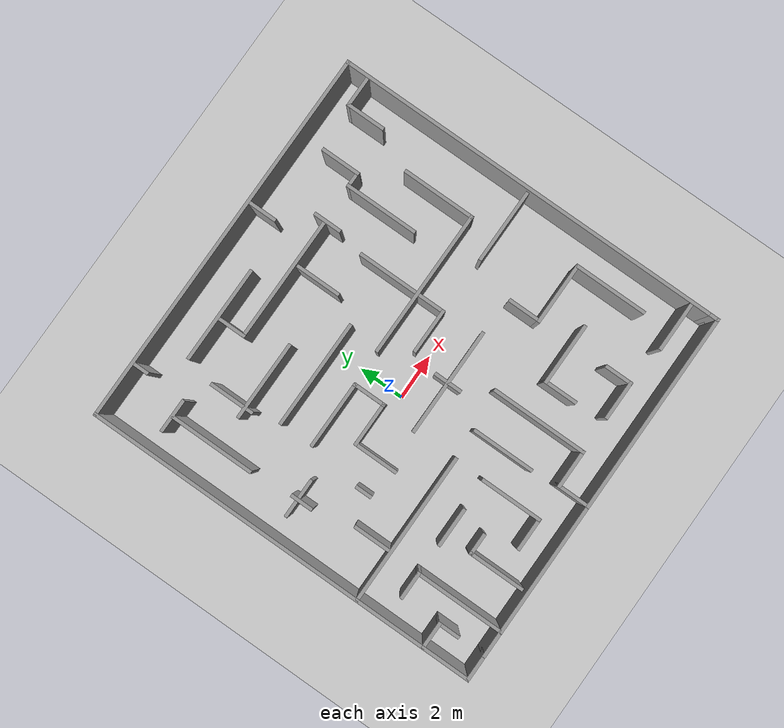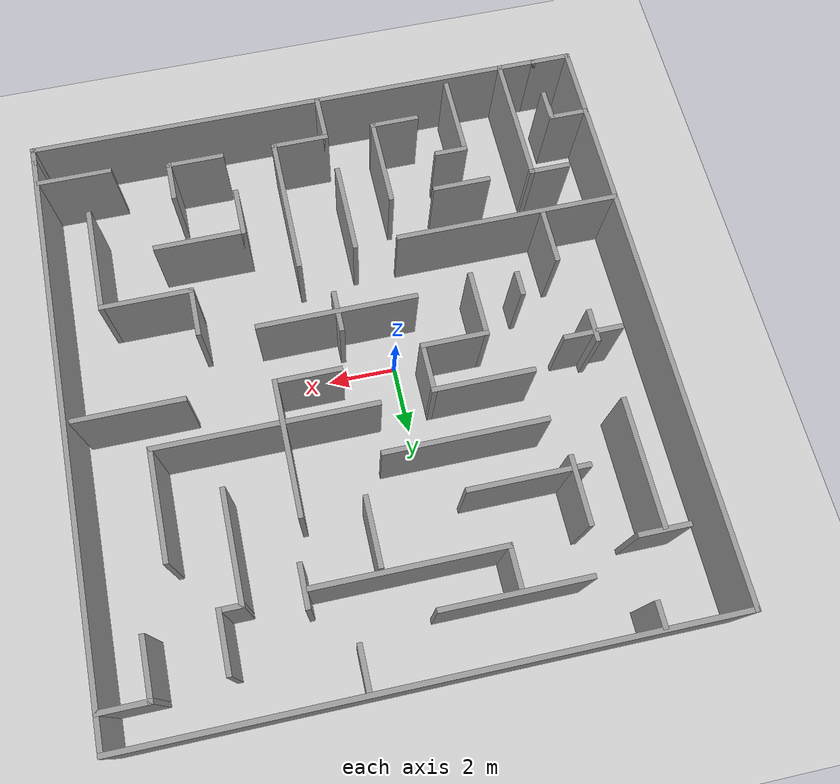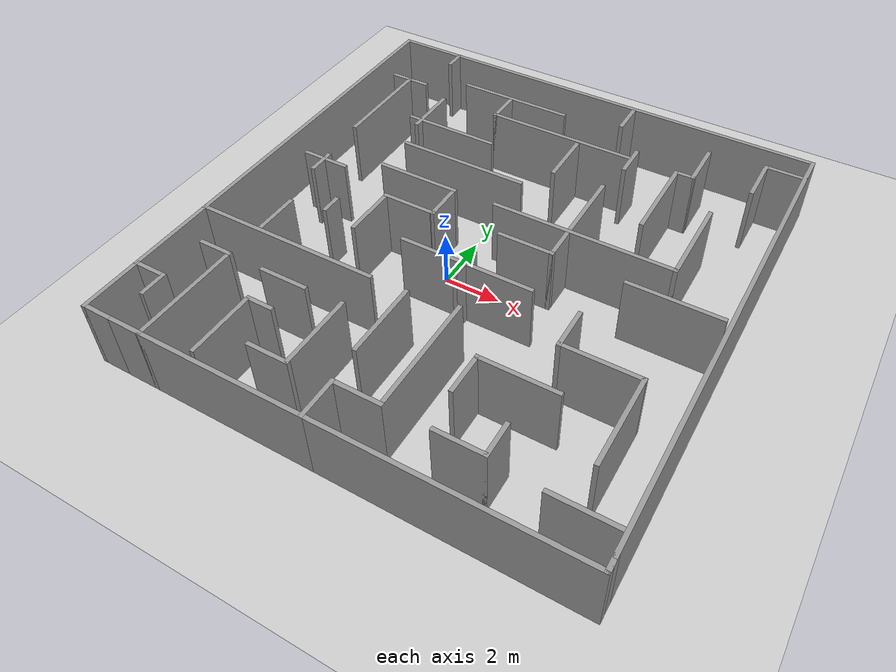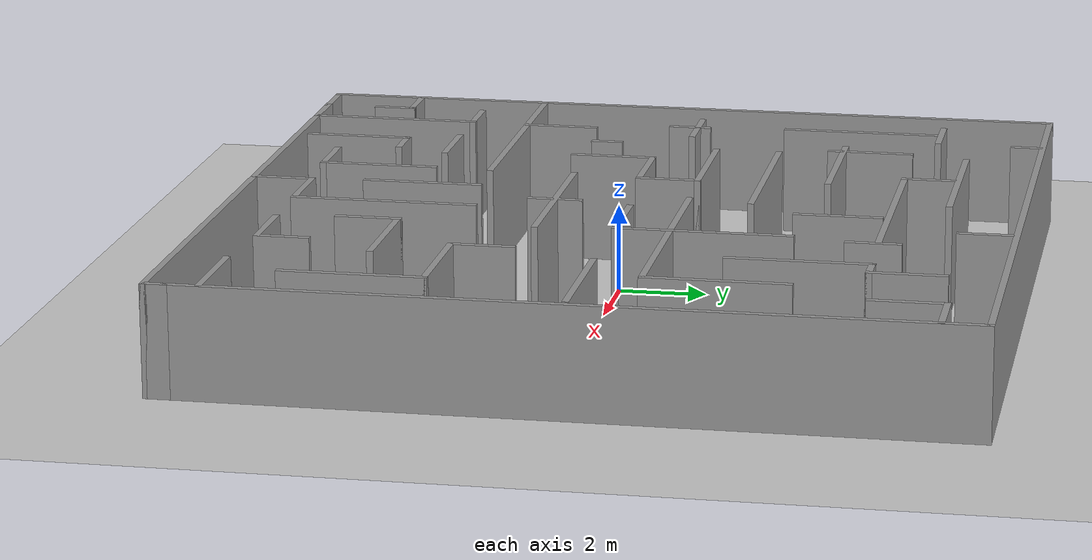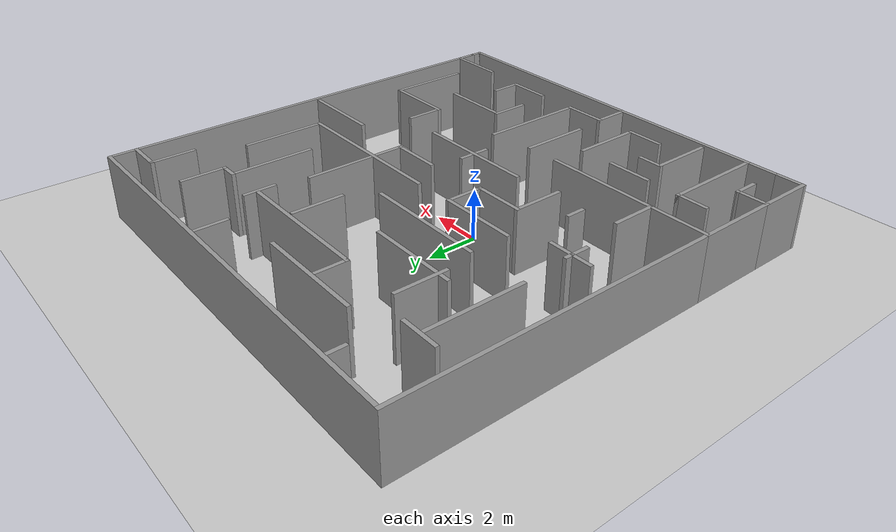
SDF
<sdf version="1.6">
 <world name="default">
  <light name="sun" type="directional">
   <pose>0 0 10 0 -0 0</pose>
   <diffuse>0.8 0.8 0.8 1</diffuse>
   <specular>0.1 0.1 0.1 1</specular>
   <attenuation>
    <range>1000</range>
    <constant>0.9</constant>
    <linear>0.01</linear>
    <quadratic>0.001</quadratic>
   </attenuation>
   <direction>-0.5 0.5 -1</direction>
  </light>
  <model name="ground_plane">
   <static>1</static>
   <link name="link">
    <collision name="collision">
     <geometry><plane><normal>0 0 1</normal><size>100 100</size></plane></geometry>
     <surface><friction><ode><mu>100</mu><mu2>50</mu2></ode></friction></surface>
    </collision>
    <visual name="visual">
     <cast_shadows>0</cast_shadows>
     <geometry><plane><normal>0 0 1</normal><size>100 100</size></plane></geometry>
     <material>
      <script><uri>file://media/materials/scripts/gazebo.material</uri><name>Gazebo/Grey</name></script>
     </material>
    </visual>
   </link>
  </model>
  <gravity>0 0 -9.8</gravity>
  <magnetic_field>6e-06 2.3e-05 -4.2e-05</magnetic_field>
  <atmosphere type="adiabatic"/>
  <physics name="default_physics" default="0" type="ode">
   <max_step_size>0.001</max_step_size>
   <real_time_factor>1</real_time_factor>
   <real_time_update_rate>1000</real_time_update_rate>
  </physics>
  <scene><ambient>0.4 0.4 0.4 1</ambient><background>0.7 0.7 0.7 1</background><shadows>1</shadows></scene>
  <spherical_coordinates>
   <surface_model>EARTH_WGS84</surface_model>
   <latitude_deg>0</latitude_deg>
   <longitude_deg>0</longitude_deg>
   <elevation>0</elevation>
   <heading_deg>0</heading_deg>
  </spherical_coordinates>
  <model name="maze1">
   <pose>1.03644 0.434019 0 0 -0 0</pose>
   <link name="Wall_1">
    <collision name="Wall_1_Collision">
     <geometry><box><size>1.25 0.15 2.5</size></box></geometry>
     <pose>0 0 1.25 0 -0 0</pose>
    </collision>
    <visual name="Wall_1_Visual">
     <pose>0 0 1.25 0 -0 0</pose>
     <geometry><box><size>1.25 0.15 2.5</size></box></geometry>
     <material>
      <script><uri>file://media/materials/scripts/gazebo.material</uri><name>Gazebo/Grey</name></script>
      <ambient>1 1 1 1</ambient>
     </material>
    </visual>
    <pose>-7.875 -8.775 0 0 -0 0</pose>
   </link>
   <link name="Wall_10">
    <collision name="Wall_10_Collision">
     <geometry><box><size>3.25 0.15 2.5</size></box></geometry>
     <pose>0 0 1.25 0 -0 0</pose>
    </collision>
    <visual name="Wall_10_Visual">
     <pose>0 0 1.25 0 -0 0</pose>
     <geometry><box><size>3.25 0.15 2.5</size></box></geometry>
     <material>
      <script><uri>file://media/materials/scripts/gazebo.material</uri><name>Gazebo/Grey</name></script>
      <ambient>1 1 1 1</ambient>
     </material>
    </visual>
    <pose>-8.425 -5.125 0 0 -0 1.5708</pose>
   </link>
   <link name="Wall_103">
    <collision name="Wall_103_Collision">
     <geometry><box><size>1.75 0.15 2.5</size></box></geometry>
     <pose>0 0 1.25 0 -0 0</pose>
    </collision>
    <visual name="Wall_103_Visual">
     <pose>0 0 1.25 0 -0 0</pose>
     <geometry><box><size>1.75 0.15 2.5</size></box></geometry>
     <material>
      <script><uri>file://media/materials/scripts/gazebo.material</uri><name>Gazebo/Grey</name></script>
      <ambient>1 1 1 1</ambient>
     </material>
    </visual>
    <pose>-4.05305 -4.95301 0 0 -0 0</pose>
   </link>
   <link name="Wall_105">
    <collision name="Wall_105_Collision">
     <geometry><box><size>2 0.15 2.5</size></box></geometry>
     <pose>0 0 1.25 0 -0 0</pose>
    </collision>
    <visual name="Wall_105_Visual">
     <pose>0 0 1.25 0 -0 0</pose>
     <geometry><box><size>2 0.15 2.5</size></box></geometry>
     <material>
      <script><uri>file://media/materials/scripts/gazebo.material</uri><name>Gazebo/Grey</name></script>
      <ambient>1 1 1 1</ambient>
     </material>
    </visual>
    <pose>-4.89755 4.83845 0 0 0 -1.5708</pose>
   </link>
   <link name="Wall_107">
    <collision name="Wall_107_Collision">
     <geometry><box><size>1 0.15 2.5</size></box></geometry>
     <pose>0 0 1.25 0 -0 0</pose>
    </collision>
    <visual name="Wall_107_Visual">
     <pose>0 0 1.25 0 -0 0</pose>
     <geometry><box><size>1 0.15 2.5</size></box></geometry>
     <material>
      <script><uri>file://media/materials/scripts/gazebo.material</uri><name>Gazebo/Grey</name></script>
      <ambient>1 1 1 1</ambient>
     </material>
    </visual>
    <pose>-6.59572 0.314694 0 0 0 -1.5708</pose>
   </link>
   <link name="Wall_109">
    <collision name="Wall_109_Collision">
     <geometry><box><size>0.75 0.15 2.5</size></box></geometry>
     <pose>0 0 1.25 0 -0 0</pose>
    </collision>
    <visual name="Wall_109_Visual">
     <pose>0 0 1.25 0 -0 0</pose>
     <geometry><box><size>0.75 0.15 2.5</size></box></geometry>
     <material>
      <script><uri>file://media/materials/scripts/gazebo.material</uri><name>Gazebo/Grey</name></script>
      <ambient>1 1 1 1</ambient>
     </material>
    </visual>
    <pose>-4.89755 -1.39999 0 0 0 -1.5708</pose>
   </link>
   <link name="Wall_11">
    <collision name="Wall_11_Collision">
     <geometry><box><size>6.75 0.15 2.5</size></box></geometry>
     <pose>0 0 1.25 0 -0 0</pose>
    </collision>
    <visual name="Wall_11_Visual">
     <pose>0 0 1.25 0 -0 0</pose>
     <geometry><box><size>6.75 0.15 2.5</size></box></geometry>
     <material>
      <script><uri>file://media/materials/scripts/gazebo.material</uri><name>Gazebo/Grey</name></script>
      <ambient>1 1 1 1</ambient>
     </material>
    </visual>
    <pose>-5.125 -3.575 0 0 -0 0</pose>
   </link>
   <link name="Wall_111">
    <collision name="Wall_111_Collision">
     <geometry><box><size>2 0.15 2.5</size></box></geometry>
     <pose>0 0 1.25 0 -0 0</pose>
    </collision>
    <visual name="Wall_111_Visual">
     <pose>0 0 1.25 0 -0 0</pose>
     <geometry><box><size>2 0.15 2.5</size></box></geometry>
     <material>
      <script><uri>file://media/materials/scripts/gazebo.material</uri><name>Gazebo/Grey</name></script>
      <ambient>1 1 1 1</ambient>
     </material>
    </visual>
    <pose>0.763016 4.76769 0 0 0 -1.5708</pose>
   </link>
   <link name="Wall_113">
    <collision name="Wall_113_Collision">
     <geometry><box><size>1.25 0.15 2.5</size></box></geometry>
     <pose>0 0 1.25 0 -0 0</pose>
    </collision>
    <visual name="Wall_113_Visual">
     <pose>0 0 1.25 0 -0 0</pose>
     <geometry><box><size>1.25 0.15 2.5</size></box></geometry>
     <material>
      <script><uri>file://media/materials/scripts/gazebo.material</uri><name>Gazebo/Grey</name></script>
      <ambient>1 1 1 1</ambient>
     </material>
    </visual>
    <pose>2.81497 5.7795 0 0 0 -1.5708</pose>
   </link>
   <link name="Wall_116">
    <collision name="Wall_116_Collision">
     <geometry><box><size>1.75 0.15 2.5</size></box></geometry>
     <pose>0 0 1.25 0 -0 0</pose>
    </collision>
    <visual name="Wall_116_Visual">
     <pose>0 0 1.25 0 -0 0</pose>
     <geometry><box><size>1.75 0.15 2.5</size></box></geometry>
     <material>
      <script><uri>file://media/materials/scripts/gazebo.material</uri><name>Gazebo/Grey</name></script>
      <ambient>1 1 1 1</ambient>
     </material>
    </visual>
    <pose>-6.53797 0.503261 0 0 -0 0</pose>
   </link>
   <link name="Wall_118">
    <collision name="Wall_118_Collision">
     <geometry><box><size>1.5 0.15 2.5</size></box></geometry>
     <pose>0 0 1.25 0 -0 0</pose>
    </collision>
    <visual name="Wall_118_Visual">
     <pose>0 0 1.25 0 -0 0</pose>
     <geometry><box><size>1.5 0.15 2.5</size></box></geometry>
     <material>
      <script><uri>file://media/materials/scripts/gazebo.material</uri><name>Gazebo/Grey</name></script>
      <ambient>1 1 1 1</ambient>
     </material>
    </visual>
    <pose>-6.75761 6.31466 0 0 -0 0</pose>
   </link>
   <link name="Wall_14">
    <collision name="Wall_14_Collision">
     <geometry><box><size>2.75 0.15 2.5</size></box></geometry>
     <pose>0 0 1.25 0 -0 0</pose>
    </collision>
    <visual name="Wall_14_Visual">
     <pose>0 0 1.25 0 -0 0</pose>
     <geometry><box><size>2.75 0.15 2.5</size></box></geometry>
     <material>
      <script><uri>file://media/materials/scripts/gazebo.material</uri><name>Gazebo/Grey</name></script>
      <ambient>1 1 1 1</ambient>
     </material>
    </visual>
    <pose>-1.875 -6.225 0 0 0 -1.5708</pose>
   </link>
   <link name="Wall_15">
    <collision name="Wall_15_Collision">
     <geometry><box><size>1.5 0.15 2.5</size></box></geometry>
     <pose>0 0 1.25 0 -0 0</pose>
    </collision>
    <visual name="Wall_15_Visual">
     <pose>0 0 1.25 0 -0 0</pose>
     <geometry><box><size>1.5 0.15 2.5</size></box></geometry>
     <material>
      <script><uri>file://media/materials/scripts/gazebo.material</uri><name>Gazebo/Grey</name></script>
      <ambient>1 1 1 1</ambient>
     </material>
    </visual>
    <pose>-2.55 -7.525 0 0 -0 3.14159</pose>
   </link>
   <link name="Wall_17">
    <collision name="Wall_17_Collision">
     <geometry><box><size>1 0.15 2.5</size></box></geometry>
     <pose>0 0 1.25 0 -0 0</pose>
    </collision>
    <visual name="Wall_17_Visual">
     <pose>0 0 1.25 0 -0 0</pose>
     <geometry><box><size>1 0.15 2.5</size></box></geometry>
     <material>
      <script><uri>file://media/materials/scripts/gazebo.material</uri><name>Gazebo/Grey</name></script>
      <ambient>1 1 1 1</ambient>
     </material>
    </visual>
    <pose>-4.01126 -6.13071 0 0 -0 3.14159</pose>
   </link>
   <link name="Wall_18">
    <collision name="Wall_18_Collision">
     <geometry><box><size>2.5 0.15 2.5</size></box></geometry>
     <pose>0 0 1.25 0 -0 0</pose>
    </collision>
    <visual name="Wall_18_Visual">
     <pose>0 0 1.25 0 -0 0</pose>
     <geometry><box><size>2.5 0.15 2.5</size></box></geometry>
     <material>
      <script><uri>file://media/materials/scripts/gazebo.material</uri><name>Gazebo/Grey</name></script>
      <ambient>1 1 1 1</ambient>
     </material>
    </visual>
    <pose>-4.43626 -7.30571 0 0 0 -1.5708</pose>
   </link>
   <link name="Wall_2">
    <collision name="Wall_2_Collision">
     <geometry><box><size>1.25 0.15 2.5</size></box></geometry>
     <pose>0 0 1.25 0 -0 0</pose>
    </collision>
    <visual name="Wall_2_Visual">
     <pose>0 0 1.25 0 -0 0</pose>
     <geometry><box><size>1.25 0.15 2.5</size></box></geometry>
     <material>
      <script><uri>file://media/materials/scripts/gazebo.material</uri><name>Gazebo/Grey</name></script>
      <ambient>1 1 1 1</ambient>
     </material>
    </visual>
    <pose>-6.775 -8.775 0 0 -0 0</pose>
   </link>
   <link name="Wall_20">
    <collision name="Wall_20_Collision">
     <geometry><box><size>6 0.15 2.5</size></box></geometry>
     <pose>0 0 1.25 0 -0 0</pose>
    </collision>
    <visual name="Wall_20_Visual">
     <pose>0 0 1.25 0 -0 0</pose>
     <geometry><box><size>6 0.15 2.5</size></box></geometry>
     <material>
      <script><uri>file://media/materials/scripts/gazebo.material</uri><name>Gazebo/Grey</name></script>
      <ambient>1 1 1 1</ambient>
     </material>
    </visual>
    <pose>-3.3 -8.775 0 0 -0 0</pose>
   </link>
   <link name="Wall_21">
    <collision name="Wall_21_Collision">
     <geometry><box><size>1.5 0.15 2.5</size></box></geometry>
     <pose>0 0 1.25 0 -0 0</pose>
    </collision>
    <visual name="Wall_21_Visual">
     <pose>0 0 1.25 0 -0 0</pose>
     <geometry><box><size>1.5 0.15 2.5</size></box></geometry>
     <material>
      <script><uri>file://media/materials/scripts/gazebo.material</uri><name>Gazebo/Grey</name></script>
      <ambient>1 1 1 1</ambient>
     </material>
    </visual>
    <pose>-0.375 -8.1 0 0 -0 1.5708</pose>
   </link>
   <link name="Wall_22">
    <collision name="Wall_22_Collision">
     <geometry><box><size>1.75 0.15 2.5</size></box></geometry>
     <pose>0 0 1.25 0 -0 0</pose>
    </collision>
    <visual name="Wall_22_Visual">
     <pose>0 0 1.25 0 -0 0</pose>
     <geometry><box><size>1.75 0.15 2.5</size></box></geometry>
     <material>
      <script><uri>file://media/materials/scripts/gazebo.material</uri><name>Gazebo/Grey</name></script>
      <ambient>1 1 1 1</ambient>
     </material>
    </visual>
    <pose>0.425 -7.425 0 0 -0 0</pose>
   </link>
   <link name="Wall_23">
    <collision name="Wall_23_Collision">
     <geometry><box><size>4.25 0.15 2.5</size></box></geometry>
     <pose>0 0 1.25 0 -0 0</pose>
    </collision>
    <visual name="Wall_23_Visual">
     <pose>0 0 1.25 0 -0 0</pose>
     <geometry><box><size>4.25 0.15 2.5</size></box></geometry>
     <material>
      <script><uri>file://media/materials/scripts/gazebo.material</uri><name>Gazebo/Grey</name></script>
      <ambient>1 1 1 1</ambient>
     </material>
    </visual>
    <pose>1.225 -5.375 0 0 -0 1.5708</pose>
   </link>
   <link name="Wall_26">
    <collision name="Wall_26_Collision">
     <geometry><box><size>2.75 0.15 2.5</size></box></geometry>
     <pose>0 0 1.25 0 -0 0</pose>
    </collision>
    <visual name="Wall_26_Visual">
     <pose>0 0 1.25 0 -0 0</pose>
     <geometry><box><size>2.75 0.15 2.5</size></box></geometry>
     <material>
      <script><uri>file://media/materials/scripts/gazebo.material</uri><name>Gazebo/Grey</name></script>
      <ambient>1 1 1 1</ambient>
     </material>
    </visual>
    <pose>-0.496672 -4.87116 0 0 -0 1.5708</pose>
   </link>
   <link name="Wall_28">
    <collision name="Wall_28_Collision">
     <geometry><box><size>12.5 0.15 2.5</size></box></geometry>
     <pose>0 0 1.25 0 -0 0</pose>
    </collision>
    <visual name="Wall_28_Visual">
     <pose>0 0 1.25 0 -0 0</pose>
     <geometry><box><size>12.5 0.15 2.5</size></box></geometry>
     <material>
      <script><uri>file://media/materials/scripts/gazebo.material</uri><name>Gazebo/Grey</name></script>
      <ambient>1 1 1 1</ambient>
     </material>
    </visual>
    <pose>-8.425 2.6 0 0 -0 1.5708</pose>
   </link>
   <link name="Wall_29">
    <collision name="Wall_29_Collision">
     <geometry><box><size>17 0.15 2.5</size></box></geometry>
     <pose>0 0 1.25 0 -0 0</pose>
    </collision>
    <visual name="Wall_29_Visual">
     <pose>0 0 1.25 0 -0 0</pose>
     <geometry><box><size>17 0.15 2.5</size></box></geometry>
     <material>
      <script><uri>file://media/materials/scripts/gazebo.material</uri><name>Gazebo/Grey</name></script>
      <ambient>1 1 1 1</ambient>
     </material>
    </visual>
    <pose>0 8.775 0 0 -0 0</pose>
   </link>
   <link name="Wall_3">
    <collision name="Wall_3_Collision">
     <geometry><box><size>4 0.15 2.5</size></box></geometry>
     <pose>0 0 1.25 0 -0 0</pose>
    </collision>
    <visual name="Wall_3_Visual">
     <pose>0 0 1.25 0 -0 0</pose>
     <geometry><box><size>4 0.15 2.5</size></box></geometry>
     <material>
      <script><uri>file://media/materials/scripts/gazebo.material</uri><name>Gazebo/Grey</name></script>
      <ambient>1 1 1 1</ambient>
     </material>
    </visual>
    <pose>-6.225 -6.85 0 0 -0 1.5708</pose>
   </link>
   <link name="Wall_30">
    <collision name="Wall_30_Collision">
     <geometry><box><size>17.25 0.15 2.5</size></box></geometry>
     <pose>0 0 1.25 0 -0 0</pose>
    </collision>
    <visual name="Wall_30_Visual">
     <pose>0 0 1.25 0 -0 0</pose>
     <geometry><box><size>17.25 0.15 2.5</size></box></geometry>
     <material>
      <script><uri>file://media/materials/scripts/gazebo.material</uri><name>Gazebo/Grey</name></script>
      <ambient>1 1 1 1</ambient>
     </material>
    </visual>
    <pose>8.425 0.224999 0 0 0 -1.5708</pose>
   </link>
   <link name="Wall_31">
    <collision name="Wall_31_Collision">
     <geometry><box><size>0.5 0.15 2.5</size></box></geometry>
     <pose>0 0 1.25 0 -0 0</pose>
    </collision>
    <visual name="Wall_31_Visual">
     <pose>0 0 1.25 0 -0 0</pose>
     <geometry><box><size>0.5 0.15 2.5</size></box></geometry>
     <material>
      <script><uri>file://media/materials/scripts/gazebo.material</uri><name>Gazebo/Grey</name></script>
      <ambient>1 1 1 1</ambient>
     </material>
    </visual>
    <pose>8.425 -8.5 0 0 0 -1.5708</pose>
   </link>
   <link name="Wall_32">
    <collision name="Wall_32_Collision">
     <geometry><box><size>0.25 0.15 2.5</size></box></geometry>
     <pose>0 0 1.25 0 -0 0</pose>
    </collision>
    <visual name="Wall_32_Visual">
     <pose>0 0 1.25 0 -0 0</pose>
     <geometry><box><size>0.25 0.15 2.5</size></box></geometry>
     <material>
      <script><uri>file://media/materials/scripts/gazebo.material</uri><name>Gazebo/Grey</name></script>
      <ambient>1 1 1 1</ambient>
     </material>
    </visual>
    <pose>8.425 -8.725 0 0 0 -1.5708</pose>
   </link>
   <link name="Wall_33">
    <collision name="Wall_33_Collision">
     <geometry><box><size>8.95 0.15 2.5</size></box></geometry>
     <pose>0 0 1.25 0 -0 0</pose>
    </collision>
    <visual name="Wall_33_Visual">
     <pose>0 0 1.25 0 -0 0</pose>
     <geometry><box><size>8.95 0.15 2.5</size></box></geometry>
     <material>
      <script><uri>file://media/materials/scripts/gazebo.material</uri><name>Gazebo/Grey</name></script>
      <ambient>1 1 1 1</ambient>
     </material>
    </visual>
    <pose>4.025 -8.775 0 0 -0 3.14159</pose>
   </link>
   <link name="Wall_35">
    <collision name="Wall_35_Collision">
     <geometry><box><size>1.75 0.15 2.5</size></box></geometry>
     <pose>0 0 1.25 0 -0 0</pose>
    </collision>
    <visual name="Wall_35_Visual">
     <pose>0 0 1.25 0 -0 0</pose>
     <geometry><box><size>1.75 0.15 2.5</size></box></geometry>
     <material>
      <script><uri>file://media/materials/scripts/gazebo.material</uri><name>Gazebo/Grey</name></script>
      <ambient>1 1 1 1</ambient>
     </material>
    </visual>
    <pose>3.65784 -7.41598 0 0 -0 0</pose>
   </link>
   <link name="Wall_36">
    <collision name="Wall_36_Collision">
     <geometry><box><size>1.25 0.15 2.5</size></box></geometry>
     <pose>0 0 1.25 0 -0 0</pose>
    </collision>
    <visual name="Wall_36_Visual">
     <pose>0 0 1.25 0 -0 0</pose>
     <geometry><box><size>1.25 0.15 2.5</size></box></geometry>
     <material>
      <script><uri>file://media/materials/scripts/gazebo.material</uri><name>Gazebo/Grey</name></script>
      <ambient>1 1 1 1</ambient>
     </material>
    </visual>
    <pose>4.45784 -6.86598 0 0 -0 1.5708</pose>
   </link>
   <link name="Wall_39">
    <collision name="Wall_39_Collision">
     <geometry><box><size>2.25 0.15 2.5</size></box></geometry>
     <pose>0 0 1.25 0 -0 0</pose>
    </collision>
    <visual name="Wall_39_Visual">
     <pose>0 0 1.25 0 -0 0</pose>
     <geometry><box><size>2.25 0.15 2.5</size></box></geometry>
     <material>
      <script><uri>file://media/materials/scripts/gazebo.material</uri><name>Gazebo/Grey</name></script>
      <ambient>1 1 1 1</ambient>
     </material>
    </visual>
    <pose>7.29766 -7.60207 0 0 -0 3.14159</pose>
   </link>
   <link name="Wall_4">
    <collision name="Wall_4_Collision">
     <geometry><box><size>1.25 0.15 2.5</size></box></geometry>
     <pose>0 0 1.25 0 -0 0</pose>
    </collision>
    <visual name="Wall_4_Visual">
     <pose>0 0 1.25 0 -0 0</pose>
     <geometry><box><size>1.25 0.15 2.5</size></box></geometry>
     <material>
      <script><uri>file://media/materials/scripts/gazebo.material</uri><name>Gazebo/Grey</name></script>
      <ambient>1 1 1 1</ambient>
     </material>
    </visual>
    <pose>-6.775 -4.925 0 0 -0 3.14159</pose>
   </link>
   <link name="Wall_42">
    <collision name="Wall_42_Collision">
     <geometry><box><size>1.5 0.15 2.5</size></box></geometry>
     <pose>0 0 1.25 0 -0 0</pose>
    </collision>
    <visual name="Wall_42_Visual">
     <pose>0 0 1.25 0 -0 0</pose>
     <geometry><box><size>1.5 0.15 2.5</size></box></geometry>
     <material>
      <script><uri>file://media/materials/scripts/gazebo.material</uri><name>Gazebo/Grey</name></script>
      <ambient>1 1 1 1</ambient>
     </material>
    </visual>
    <pose>2.62602 -5.39178 0 0 -0 1.5708</pose>
   </link>
   <link name="Wall_45">
    <collision name="Wall_45_Collision">
     <geometry><box><size>3.25 0.15 2.5</size></box></geometry>
     <pose>0 0 1.25 0 -0 0</pose>
    </collision>
    <visual name="Wall_45_Visual">
     <pose>0 0 1.25 0 -0 0</pose>
     <geometry><box><size>3.25 0.15 2.5</size></box></geometry>
     <material>
      <script><uri>file://media/materials/scripts/gazebo.material</uri><name>Gazebo/Grey</name></script>
      <ambient>1 1 1 1</ambient>
     </material>
    </visual>
    <pose>7.01214 -4.69516 0 0 -0 1.5708</pose>
   </link>
   <link name="Wall_46">
    <collision name="Wall_46_Collision">
     <geometry><box><size>2.75 0.15 2.5</size></box></geometry>
     <pose>0 0 1.25 0 -0 0</pose>
    </collision>
    <visual name="Wall_46_Visual">
     <pose>0 0 1.25 0 -0 0</pose>
     <geometry><box><size>2.75 0.15 2.5</size></box></geometry>
     <material>
      <script><uri>file://media/materials/scripts/gazebo.material</uri><name>Gazebo/Grey</name></script>
      <ambient>1 1 1 1</ambient>
     </material>
    </visual>
    <pose>5.71214 -3.14516 0 0 -0 3.14159</pose>
   </link>
   <link name="Wall_47">
    <collision name="Wall_47_Collision">
     <geometry><box><size>1.5 0.15 2.5</size></box></geometry>
     <pose>0 0 1.25 0 -0 0</pose>
    </collision>
    <visual name="Wall_47_Visual">
     <pose>0 0 1.25 0 -0 0</pose>
     <geometry><box><size>1.5 0.15 2.5</size></box></geometry>
     <material>
      <script><uri>file://media/materials/scripts/gazebo.material</uri><name>Gazebo/Grey</name></script>
      <ambient>1 1 1 1</ambient>
     </material>
    </visual>
    <pose>4.41214 -2.47016 0 0 -0 1.5708</pose>
   </link>
   <link name="Wall_49">
    <collision name="Wall_49_Collision">
     <geometry><box><size>2.75 0.15 2.5</size></box></geometry>
     <pose>0 0 1.25 0 -0 0</pose>
    </collision>
    <visual name="Wall_49_Visual">
     <pose>0 0 1.25 0 -0 0</pose>
     <geometry><box><size>2.75 0.15 2.5</size></box></geometry>
     <material>
      <script><uri>file://media/materials/scripts/gazebo.material</uri><name>Gazebo/Grey</name></script>
      <ambient>1 1 1 1</ambient>
     </material>
    </visual>
    <pose>3.92602 -4.71678 0 0 -0 0</pose>
   </link>
   <link name="Wall_51">
    <collision name="Wall_51_Collision">
     <geometry><box><size>1.75 0.15 2.5</size></box></geometry>
     <pose>0 0 1.25 0 -0 0</pose>
    </collision>
    <visual name="Wall_51_Visual">
     <pose>0 0 1.25 0 -0 0</pose>
     <geometry><box><size>1.75 0.15 2.5</size></box></geometry>
     <material>
      <script><uri>file://media/materials/scripts/gazebo.material</uri><name>Gazebo/Grey</name></script>
      <ambient>1 1 1 1</ambient>
     </material>
    </visual>
    <pose>-6.16739 -2.74277 0 0 -0 1.5708</pose>
   </link>
   <link name="Wall_53">
    <collision name="Wall_53_Collision">
     <geometry><box><size>2 0.15 2.5</size></box></geometry>
     <pose>0 0 1.25 0 -0 0</pose>
    </collision>
    <visual name="Wall_53_Visual">
     <pose>0 0 1.25 0 -0 0</pose>
     <geometry><box><size>2 0.15 2.5</size></box></geometry>
     <material>
      <script><uri>file://media/materials/scripts/gazebo.material</uri><name>Gazebo/Grey</name></script>
      <ambient>1 1 1 1</ambient>
     </material>
    </visual>
    <pose>-3.56739 -1.01777 0 0 -0 1.5708</pose>
   </link>
   <link name="Wall_54">
    <collision name="Wall_54_Collision">
     <geometry><box><size>2 0.15 2.5</size></box></geometry>
     <pose>0 0 1.25 0 -0 0</pose>
    </collision>
    <visual name="Wall_54_Visual">
     <pose>0 0 1.25 0 -0 0</pose>
     <geometry><box><size>2 0.15 2.5</size></box></geometry>
     <material>
      <script><uri>file://media/materials/scripts/gazebo.material</uri><name>Gazebo/Grey</name></script>
      <ambient>1 1 1 1</ambient>
     </material>
    </visual>
    <pose>-2.64239 -0.092773 0 0 -0 0</pose>
   </link>
   <link name="Wall_55">
    <collision name="Wall_55_Collision">
     <geometry><box><size>1.5 0.15 2.5</size></box></geometry>
     <pose>0 0 1.25 0 -0 0</pose>
    </collision>
    <visual name="Wall_55_Visual">
     <pose>0 0 1.25 0 -0 0</pose>
     <geometry><box><size>1.5 0.15 2.5</size></box></geometry>
     <material>
      <script><uri>file://media/materials/scripts/gazebo.material</uri><name>Gazebo/Grey</name></script>
      <ambient>1 1 1 1</ambient>
     </material>
    </visual>
    <pose>-1.71739 0.582227 0 0 -0 1.5708</pose>
   </link>
   <link name="Wall_56">
    <collision name="Wall_56_Collision">
     <geometry><box><size>3 0.15 2.5</size></box></geometry>
     <pose>0 0 1.25 0 -0 0</pose>
    </collision>
    <visual name="Wall_56_Visual">
     <pose>0 0 1.25 0 -0 0</pose>
     <geometry><box><size>3 0.15 2.5</size></box></geometry>
     <material>
      <script><uri>file://media/materials/scripts/gazebo.material</uri><name>Gazebo/Grey</name></script>
      <ambient>1 1 1 1</ambient>
     </material>
    </visual>
    <pose>-3.14239 1.25723 0 0 -0 3.14159</pose>
   </link>
   <link name="Wall_58">
    <collision name="Wall_58_Collision">
     <geometry><box><size>4.25 0.15 2.5</size></box></geometry>
     <pose>0 0 1.25 0 -0 0</pose>
    </collision>
    <visual name="Wall_58_Visual">
     <pose>0 0 1.25 0 -0 0</pose>
     <geometry><box><size>4.25 0.15 2.5</size></box></geometry>
     <material>
      <script><uri>file://media/materials/scripts/gazebo.material</uri><name>Gazebo/Grey</name></script>
      <ambient>1 1 1 1</ambient>
     </material>
    </visual>
    <pose>-2.51739 7.10723 0 0 -0 0</pose>
   </link>
   <link name="Wall_6">
    <collision name="Wall_6_Collision">
     <geometry><box><size>2.25 0.15 2.5</size></box></geometry>
     <pose>0 0 1.25 0 -0 0</pose>
    </collision>
    <visual name="Wall_6_Visual">
     <pose>0 0 1.25 0 -0 0</pose>
     <geometry><box><size>2.25 0.15 2.5</size></box></geometry>
     <material>
      <script><uri>file://media/materials/scripts/gazebo.material</uri><name>Gazebo/Grey</name></script>
      <ambient>1 1 1 1</ambient>
     </material>
    </visual>
    <pose>-8.425 -7.725 0 0 -0 1.5708</pose>
   </link>
   <link name="Wall_65">
    <collision name="Wall_65_Collision">
     <geometry><box><size>3.75 0.15 2.5</size></box></geometry>
     <pose>0 0 1.25 0 -0 0</pose>
    </collision>
    <visual name="Wall_65_Visual">
     <pose>0 0 1.25 0 -0 0</pose>
     <geometry><box><size>3.75 0.15 2.5</size></box></geometry>
     <material>
      <script><uri>file://media/materials/scripts/gazebo.material</uri><name>Gazebo/Grey</name></script>
      <ambient>1 1 1 1</ambient>
     </material>
    </visual>
    <pose>-6.7785 4.44016 0 0 0 -1.5708</pose>
   </link>
   <link name="Wall_67">
    <collision name="Wall_67_Collision">
     <geometry><box><size>3.5 0.15 2.5</size></box></geometry>
     <pose>0 0 1.25 0 -0 0</pose>
    </collision>
    <visual name="Wall_67_Visual">
     <pose>0 0 1.25 0 -0 0</pose>
     <geometry><box><size>3.5 0.15 2.5</size></box></geometry>
     <material>
      <script><uri>file://media/materials/scripts/gazebo.material</uri><name>Gazebo/Grey</name></script>
      <ambient>1 1 1 1</ambient>
     </material>
    </visual>
    <pose>-3.631 4.20974 0 0 -0 0</pose>
   </link>
   <link name="Wall_69">
    <collision name="Wall_69_Collision">
     <geometry><box><size>1.25 0.15 2.5</size></box></geometry>
     <pose>0 0 1.25 0 -0 0</pose>
    </collision>
    <visual name="Wall_69_Visual">
     <pose>0 0 1.25 0 -0 0</pose>
     <geometry><box><size>1.25 0.15 2.5</size></box></geometry>
     <material>
      <script><uri>file://media/materials/scripts/gazebo.material</uri><name>Gazebo/Grey</name></script>
      <ambient>1 1 1 1</ambient>
     </material>
    </visual>
    <pose>-2.6603 6.42849 0 0 0 -1.5708</pose>
   </link>
   <link name="Wall_7">
    <collision name="Wall_7_Collision">
     <geometry><box><size>1.25 0.15 2.5</size></box></geometry>
     <pose>0 0 1.25 0 -0 0</pose>
    </collision>
    <visual name="Wall_7_Visual">
     <pose>0 0 1.25 0 -0 0</pose>
     <geometry><box><size>1.25 0.15 2.5</size></box></geometry>
     <material>
      <script><uri>file://media/materials/scripts/gazebo.material</uri><name>Gazebo/Grey</name></script>
      <ambient>1 1 1 1</ambient>
     </material>
    </visual>
    <pose>-7.875 -6.675 0 0 -0 0</pose>
   </link>
   <link name="Wall_70">
    <collision name="Wall_70_Collision">
     <geometry><box><size>5.5 0.15 2.5</size></box></geometry>
     <pose>0 0 1.25 0 -0 0</pose>
    </collision>
    <visual name="Wall_70_Visual">
     <pose>0 0 1.25 0 -0 0</pose>
     <geometry><box><size>5.5 0.15 2.5</size></box></geometry>
     <material>
      <script><uri>file://media/materials/scripts/gazebo.material</uri><name>Gazebo/Grey</name></script>
      <ambient>1 1 1 1</ambient>
     </material>
    </visual>
    <pose>0.014701 5.87849 0 0 -0 0</pose>
   </link>
   <link name="Wall_74">
    <collision name="Wall_74_Collision">
     <geometry><box><size>1.25 0.15 2.5</size></box></geometry>
     <pose>0 0 1.25 0 -0 0</pose>
    </collision>
    <visual name="Wall_74_Visual">
     <pose>0 0 1.25 0 -0 0</pose>
     <geometry><box><size>1.25 0.15 2.5</size></box></geometry>
     <material>
      <script><uri>file://media/materials/scripts/gazebo.material</uri><name>Gazebo/Grey</name></script>
      <ambient>1 1 1 1</ambient>
     </material>
    </visual>
    <pose>1.70818 8.08975 0 0 0 -1.5708</pose>
   </link>
   <link name="Wall_76">
    <collision name="Wall_76_Collision">
     <geometry><box><size>1.75 0.15 2.5</size></box></geometry>
     <pose>0 0 1.25 0 -0 0</pose>
    </collision>
    <visual name="Wall_76_Visual">
     <pose>0 0 1.25 0 -0 0</pose>
     <geometry><box><size>1.75 0.15 2.5</size></box></geometry>
     <material>
      <script><uri>file://media/materials/scripts/gazebo.material</uri><name>Gazebo/Grey</name></script>
      <ambient>1 1 1 1</ambient>
     </material>
    </visual>
    <pose>5.05818 6.73975 0 0 0 -1.5708</pose>
   </link>
   <link name="Wall_77">
    <collision name="Wall_77_Collision">
     <geometry><box><size>0.75 0.15 2.5</size></box></geometry>
     <pose>0 0 1.25 0 -0 0</pose>
    </collision>
    <visual name="Wall_77_Visual">
     <pose>0 0 1.25 0 -0 0</pose>
     <geometry><box><size>0.75 0.15 2.5</size></box></geometry>
     <material>
      <script><uri>file://media/materials/scripts/gazebo.material</uri><name>Gazebo/Grey</name></script>
      <ambient>1 1 1 1</ambient>
     </material>
    </visual>
    <pose>4.75818 5.93975 0 0 -0 3.14159</pose>
   </link>
   <link name="Wall_78">
    <collision name="Wall_78_Collision">
     <geometry><box><size>3.25 0.15 2.5</size></box></geometry>
     <pose>0 0 1.25 0 -0 0</pose>
    </collision>
    <visual name="Wall_78_Visual">
     <pose>0 0 1.25 0 -0 0</pose>
     <geometry><box><size>3.25 0.15 2.5</size></box></geometry>
     <material>
      <script><uri>file://media/materials/scripts/gazebo.material</uri><name>Gazebo/Grey</name></script>
      <ambient>1 1 1 1</ambient>
     </material>
    </visual>
    <pose>4.45818 4.38975 0 0 0 -1.5708</pose>
   </link>
   <link name="Wall_8">
    <collision name="Wall_8_Collision">
     <geometry><box><size>1 0.15 2.5</size></box></geometry>
     <pose>0 0 1.25 0 -0 0</pose>
    </collision>
    <visual name="Wall_8_Visual">
     <pose>0 0 1.25 0 -0 0</pose>
     <geometry><box><size>1 0.15 2.5</size></box></geometry>
     <material>
      <script><uri>file://media/materials/scripts/gazebo.material</uri><name>Gazebo/Grey</name></script>
      <ambient>1 1 1 1</ambient>
     </material>
    </visual>
    <pose>-7.325 -7.1 0 0 0 -1.5708</pose>
   </link>
   <link name="Wall_80">
    <collision name="Wall_80_Collision">
     <geometry><box><size>4.75 0.15 2.5</size></box></geometry>
     <pose>0 0 1.25 0 -0 0</pose>
    </collision>
    <visual name="Wall_80_Visual">
     <pose>0 0 1.25 0 -0 0</pose>
     <geometry><box><size>4.75 0.15 2.5</size></box></geometry>
     <material>
      <script><uri>file://media/materials/scripts/gazebo.material</uri><name>Gazebo/Grey</name></script>
      <ambient>1 1 1 1</ambient>
     </material>
    </visual>
    <pose>-2.26766 2.73307 0 0 -0 0</pose>
   </link>
   <link name="Wall_84">
    <collision name="Wall_84_Collision">
     <geometry><box><size>4 0.15 2.5</size></box></geometry>
     <pose>0 0 1.25 0 -0 0</pose>
    </collision>
    <visual name="Wall_84_Visual">
     <pose>0 0 1.25 0 -0 0</pose>
     <geometry><box><size>4 0.15 2.5</size></box></geometry>
     <material>
      <script><uri>file://media/materials/scripts/gazebo.material</uri><name>Gazebo/Grey</name></script>
      <ambient>1 1 1 1</ambient>
     </material>
    </visual>
    <pose>2.55429 2.03446 0 0 0 -1.5708</pose>
   </link>
   <link name="Wall_85">
    <collision name="Wall_85_Collision">
     <geometry><box><size>2 0.15 2.5</size></box></geometry>
     <pose>0 0 1.25 0 -0 0</pose>
    </collision>
    <visual name="Wall_85_Visual">
     <pose>0 0 1.25 0 -0 0</pose>
     <geometry><box><size>2 0.15 2.5</size></box></geometry>
     <material>
      <script><uri>file://media/materials/scripts/gazebo.material</uri><name>Gazebo/Grey</name></script>
      <ambient>1 1 1 1</ambient>
     </material>
    </visual>
    <pose>1.62929 0.109464 0 0 -0 3.14159</pose>
   </link>
   <link name="Wall_87">
    <collision name="Wall_87_Collision">
     <geometry><box><size>6.5 0.15 2.5</size></box></geometry>
     <pose>0 0 1.25 0 -0 0</pose>
    </collision>
    <visual name="Wall_87_Visual">
     <pose>0 0 1.25 0 -0 0</pose>
     <geometry><box><size>6.5 0.15 2.5</size></box></geometry>
     <material>
      <script><uri>file://media/materials/scripts/gazebo.material</uri><name>Gazebo/Grey</name></script>
      <ambient>1 1 1 1</ambient>
     </material>
    </visual>
    <pose>3.03734 1.31793 0 0 -0 0</pose>
   </link>
   <link name="Wall_88">
    <collision name="Wall_88_Collision">
     <geometry><box><size>3.25 0.15 2.5</size></box></geometry>
     <pose>0 0 1.25 0 -0 0</pose>
    </collision>
    <visual name="Wall_88_Visual">
     <pose>0 0 1.25 0 -0 0</pose>
     <geometry><box><size>3.25 0.15 2.5</size></box></geometry>
     <material>
      <script><uri>file://media/materials/scripts/gazebo.material</uri><name>Gazebo/Grey</name></script>
      <ambient>1 1 1 1</ambient>
     </material>
    </visual>
    <pose>6.21234 2.86793 0 0 -0 1.5708</pose>
   </link>
   <link name="Wall_90">
    <collision name="Wall_90_Collision">
     <geometry><box><size>3.25 0.15 2.5</size></box></geometry>
     <pose>0 0 1.25 0 -0 0</pose>
    </collision>
    <visual name="Wall_90_Visual">
     <pose>0 0 1.25 0 -0 0</pose>
     <geometry><box><size>3.25 0.15 2.5</size></box></geometry>
     <material>
      <script><uri>file://media/materials/scripts/gazebo.material</uri><name>Gazebo/Grey</name></script>
      <ambient>1 1 1 1</ambient>
     </material>
    </visual>
    <pose>6.64221 0.087372 0 0 -0 0</pose>
   </link>
   <link name="Wall_92">
    <collision name="Wall_92_Collision">
     <geometry><box><size>4.75 0.15 2.5</size></box></geometry>
     <pose>0 0 1.25 0 -0 0</pose>
    </collision>
    <visual name="Wall_92_Visual">
     <pose>0 0 1.25 0 -0 0</pose>
     <geometry><box><size>4.75 0.15 2.5</size></box></geometry>
     <material>
      <script><uri>file://media/materials/scripts/gazebo.material</uri><name>Gazebo/Grey</name></script>
      <ambient>1 1 1 1</ambient>
     </material>
    </visual>
    <pose>0.439563 -1.63541 0 0 -0 0</pose>
   </link>
   <link name="Wall_94">
    <collision name="Wall_94_Collision">
     <geometry><box><size>1.25 0.15 2.5</size></box></geometry>
     <pose>0 0 1.25 0 -0 0</pose>
    </collision>
    <visual name="Wall_94_Visual">
     <pose>0 0 1.25 0 -0 0</pose>
     <geometry><box><size>1.25 0.15 2.5</size></box></geometry>
     <material>
      <script><uri>file://media/materials/scripts/gazebo.material</uri><name>Gazebo/Grey</name></script>
      <ambient>1 1 1 1</ambient>
     </material>
    </visual>
    <pose>0.416095 -1.63166 0 0 0 -1.5708</pose>
   </link>
   <link name="Wall_96">
    <collision name="Wall_96_Collision">
     <geometry><box><size>0.75 0.15 2.5</size></box></geometry>
     <pose>0 0 1.25 0 -0 0</pose>
    </collision>
    <visual name="Wall_96_Visual">
     <pose>0 0 1.25 0 -0 0</pose>
     <geometry><box><size>0.75 0.15 2.5</size></box></geometry>
     <material>
      <script><uri>file://media/materials/scripts/gazebo.material</uri><name>Gazebo/Grey</name></script>
      <ambient>1 1 1 1</ambient>
     </material>
    </visual>
    <pose>-5.9828 8.40127 0 0 0 -1.5708</pose>
   </link>
   <link name="Wall_98">
    <collision name="Wall_98_Collision">
     <geometry><box><size>1.5 0.15 2.5</size></box></geometry>
     <pose>0 0 1.25 0 -0 0</pose>
    </collision>
    <visual name="Wall_98_Visual">
     <pose>0 0 1.25 0 -0 0</pose>
     <geometry><box><size>1.5 0.15 2.5</size></box></geometry>
     <material>
      <script><uri>file://media/materials/scripts/gazebo.material</uri><name>Gazebo/Grey</name></script>
      <ambient>1 1 1 1</ambient>
     </material>
    </visual>
    <pose>7.73972 7.77836 0 0 -0 3.14159</pose>
   </link>
   <link name="Wall_99">
    <collision name="Wall_99_Collision">
     <geometry><box><size>1.75 0.15 2.5</size></box></geometry>
     <pose>0 0 1.25 0 -0 0</pose>
    </collision>
    <visual name="Wall_99_Visual">
     <pose>0 0 1.25 0 -0 0</pose>
     <geometry><box><size>1.75 0.15 2.5</size></box></geometry>
     <material>
      <script><uri>file://media/materials/scripts/gazebo.material</uri><name>Gazebo/Grey</name></script>
      <ambient>1 1 1 1</ambient>
     </material>
    </visual>
    <pose>7.06472 6.97836 0 0 0 -1.5708</pose>
   </link>
   <static>1</static>
  </model>
 </world>
</sdf>
